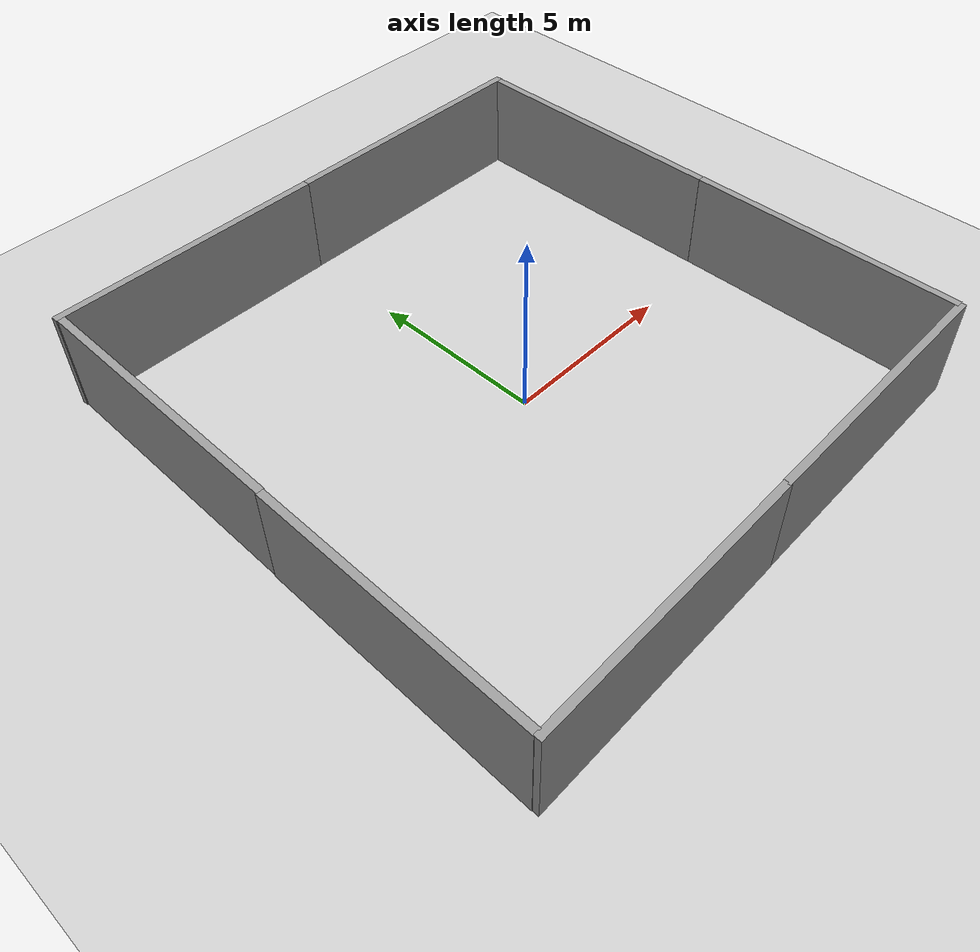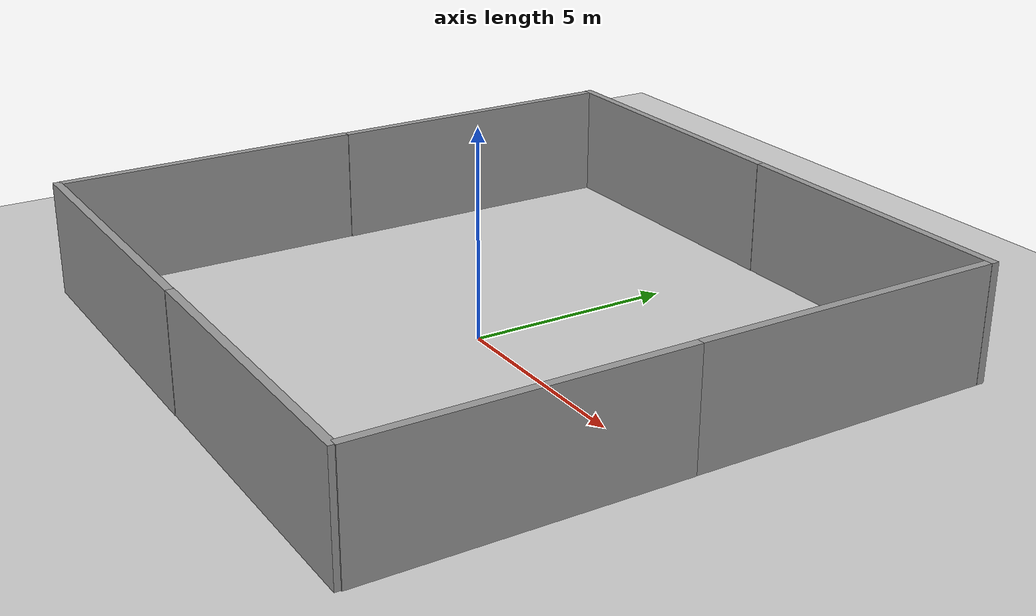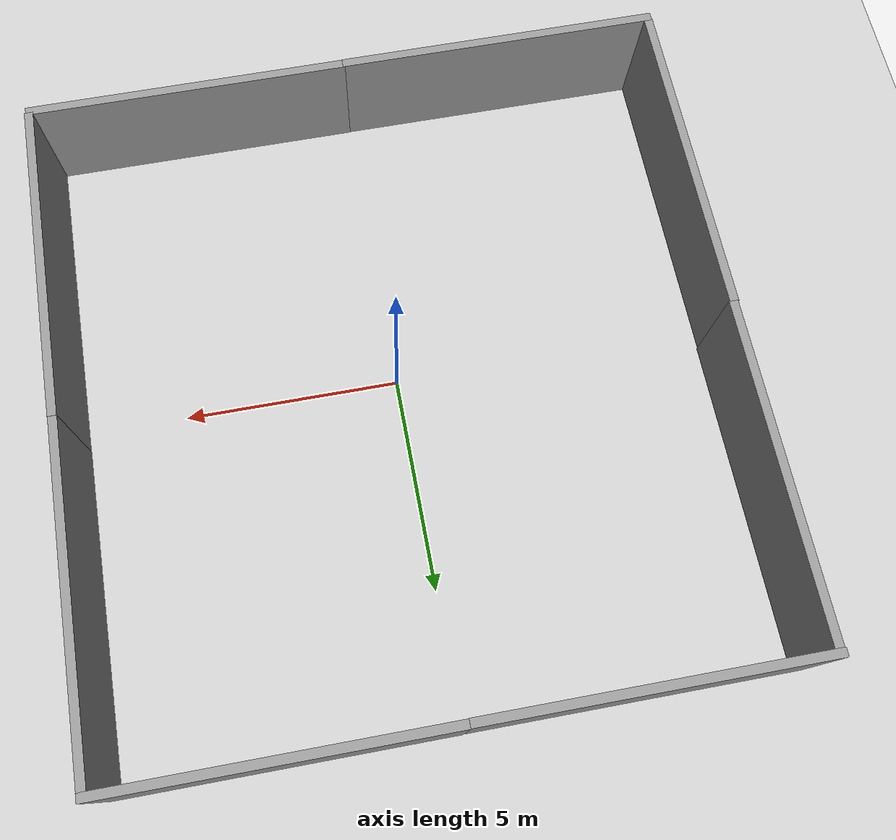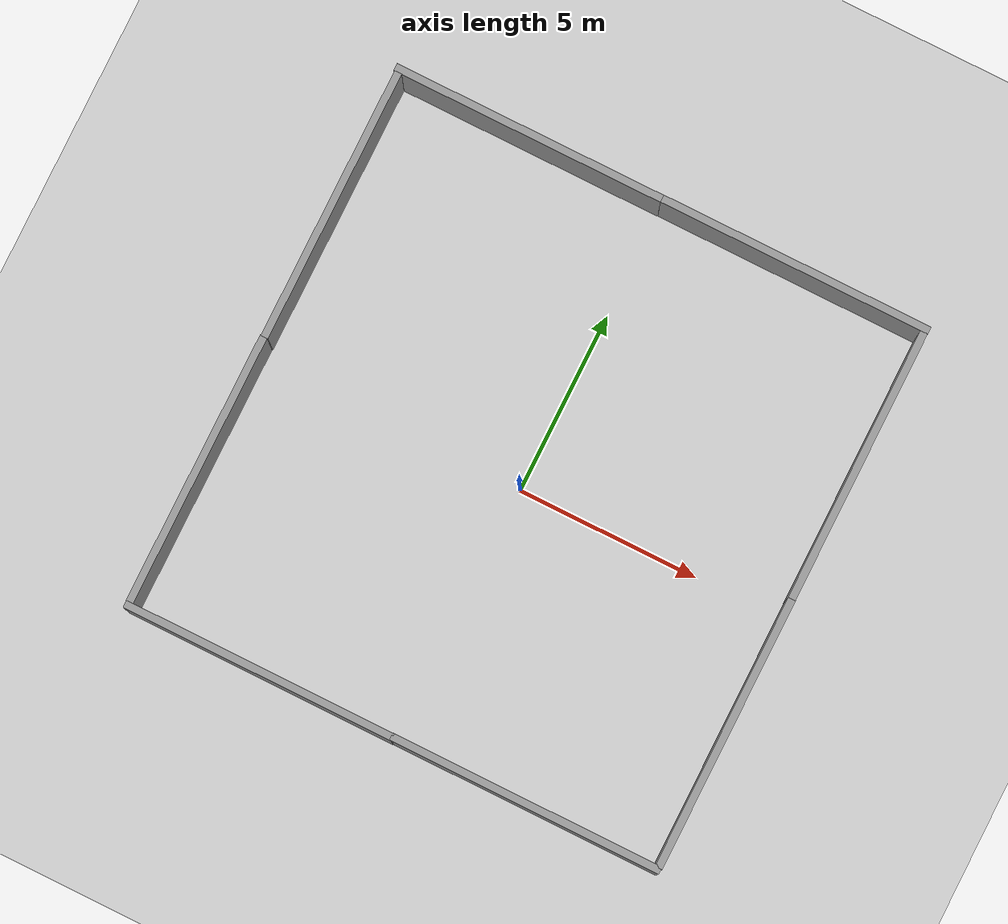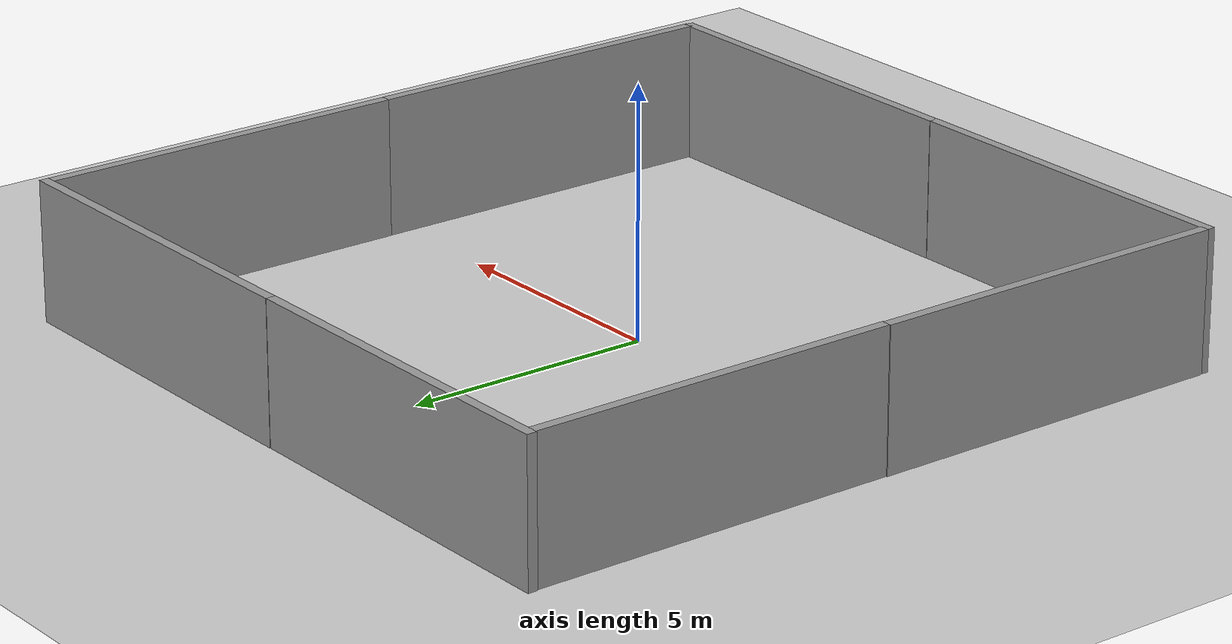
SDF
<sdf version="1.6">
 <world name="default">
  <light name="sun" type="directional">
   <pose>0 0 10 0 -0 0</pose>
   <diffuse>0.8 0.8 0.8 1</diffuse>
   <specular>0.1 0.1 0.1 1</specular>
   <attenuation>
    <range>1000</range>
    <constant>0.9</constant>
    <linear>0.01</linear>
    <quadratic>0.001</quadratic>
   </attenuation>
   <direction>-0.5 0.5 -1</direction>
  </light>
  <model name="ground_plane">
   <static>1</static>
   <link name="link">
    <collision name="collision">
     <geometry><plane><normal>0 0 1</normal><size>100 100</size></plane></geometry>
     <surface><friction><ode><mu>100</mu><mu2>50</mu2></ode></friction></surface>
    </collision>
    <visual name="visual">
     <cast_shadows>0</cast_shadows>
     <geometry><plane><normal>0 0 1</normal><size>100 100</size></plane></geometry>
     <material>
      <script><uri>file://media/materials/scripts/gazebo.material</uri><name>Gazebo/Grey</name></script>
     </material>
    </visual>
   </link>
  </model>
  <gravity>0 0 -9.8</gravity>
  <magnetic_field>6e-06 2.3e-05 -4.2e-05</magnetic_field>
  <atmosphere type="adiabatic"/>
  <physics name="default_physics" default="0" type="ode">
   <max_step_size>0.001</max_step_size>
   <real_time_factor>1</real_time_factor>
   <real_time_update_rate>1000</real_time_update_rate>
  </physics>
  <scene><ambient>0.4 0.4 0.4 1</ambient><background>0.7 0.7 0.7 1</background><shadows>1</shadows></scene>
  <spherical_coordinates>
   <surface_model>EARTH_WGS84</surface_model>
   <latitude_deg>0</latitude_deg>
   <longitude_deg>0</longitude_deg>
   <elevation>0</elevation>
   <heading_deg>0</heading_deg>
  </spherical_coordinates>
  <model name="grey_wall">
   <static>1</static>
   <link name="link">
    <pose>0 0 1.4 0 -0 0</pose>
    <collision name="collision"><geometry><box><size>7.5 0.2 2.8</size></box></geometry></collision>
    <visual name="visual">
     <cast_shadows>0</cast_shadows>
     <geometry><box><size>7.5 0.2 2.8</size></box></geometry>
     <material>
      <script>
       <uri>model://grey_wall/materials/scripts</uri>
       <uri>model://grey_wall/materials/textures</uri>
       <name>vrc/grey_wall</name>
      </script>
     </material>
    </visual>
   </link>
   <pose>-3.73857 7.99653 0 0 -0 0</pose>
  </model>
  <model name="grey_wall_0">
   <static>1</static>
   <link name="link">
    <pose>0 0 1.4 0 -0 0</pose>
    <collision name="collision"><geometry><box><size>7.5 0.2 2.8</size></box></geometry></collision>
    <visual name="visual">
     <cast_shadows>0</cast_shadows>
     <geometry><box><size>7.5 0.2 2.8</size></box></geometry>
     <material>
      <script>
       <uri>model://grey_wall/materials/scripts</uri>
       <uri>model://grey_wall/materials/textures</uri>
       <name>vrc/grey_wall</name>
      </script>
     </material>
    </visual>
   </link>
   <pose>3.75917 8.00369 0 0 -0 0</pose>
  </model>
  <model name="grey_wall_1">
   <static>1</static>
   <link name="link">
    <pose>0 0 1.4 0 -0 0</pose>
    <collision name="collision"><geometry><box><size>7.5 0.2 2.8</size></box></geometry></collision>
    <visual name="visual">
     <cast_shadows>0</cast_shadows>
     <geometry><box><size>7.5 0.2 2.8</size></box></geometry>
     <material>
      <script>
       <uri>model://grey_wall/materials/scripts</uri>
       <uri>model://grey_wall/materials/textures</uri>
       <name>vrc/grey_wall</name>
      </script>
     </material>
    </visual>
   </link>
   <pose>7.40152 4.1598 0 0 0 -1.57173</pose>
  </model>
  <model name="grey_wall_1_clone">
   <static>1</static>
   <link name="link">
    <pose>0 0 1.4 0 -0 0</pose>
    <collision name="collision"><geometry><box><size>7.5 0.2 2.8</size></box></geometry></collision>
    <visual name="visual">
     <cast_shadows>0</cast_shadows>
     <geometry><box><size>7.5 0.2 2.8</size></box></geometry>
     <material>
      <script>
       <uri>model://grey_wall/materials/scripts</uri>
       <uri>model://grey_wall/materials/textures</uri>
       <name>vrc/grey_wall</name>
      </script>
     </material>
    </visual>
   </link>
   <pose>7.39987 -3.34124 0 0 0 -1.57173</pose>
  </model>
  <model name="grey_wall_1_clone_0">
   <static>1</static>
   <link name="link">
    <pose>0 0 1.4 0 -0 0</pose>
    <collision name="collision"><geometry><box><size>7.5 0.2 2.8</size></box></geometry></collision>
    <visual name="visual">
     <cast_shadows>0</cast_shadows>
     <geometry><box><size>7.5 0.2 2.8</size></box></geometry>
     <material>
      <script>
       <uri>model://grey_wall/materials/scripts</uri>
       <uri>model://grey_wall/materials/textures</uri>
       <name>vrc/grey_wall</name>
      </script>
     </material>
    </visual>
   </link>
   <pose>-7.36726 4.15637 0 0 0 -1.57173</pose>
  </model>
  <model name="grey_wall_1_clone_0_clone">
   <static>1</static>
   <link name="link">
    <pose>0 0 1.4 0 -0 0</pose>
    <collision name="collision"><geometry><box><size>7.5 0.2 2.8</size></box></geometry></collision>
    <visual name="visual">
     <cast_shadows>0</cast_shadows>
     <geometry><box><size>7.5 0.2 2.8</size></box></geometry>
     <material>
      <script>
       <uri>model://grey_wall/materials/scripts</uri>
       <uri>model://grey_wall/materials/textures</uri>
       <name>vrc/grey_wall</name>
      </script>
     </material>
    </visual>
   </link>
   <pose>-7.3945 -3.32213 0 0 0 -1.57173</pose>
  </model>
  <model name="grey_wall_clone">
   <static>1</static>
   <link name="link">
    <pose>0 0 1.4 0 -0 0</pose>
    <collision name="collision"><geometry><box><size>7.5 0.2 2.8</size></box></geometry></collision>
    <visual name="visual">
     <cast_shadows>0</cast_shadows>
     <geometry><box><size>7.5 0.2 2.8</size></box></geometry>
     <material>
      <script>
       <uri>model://grey_wall/materials/scripts</uri>
       <uri>model://grey_wall/materials/textures</uri>
       <name>vrc/grey_wall</name>
      </script>
     </material>
    </visual>
   </link>
   <pose>-3.73569 -7.13591 0 0 -0 0</pose>
  </model>
  <model name="grey_wall_0_clone">
   <static>1</static>
   <link name="link">
    <pose>0 0 1.4 0 -0 0</pose>
    <collision name="collision"><geometry><box><size>7.5 0.2 2.8</size></box></geometry></collision>
    <visual name="visual">
     <cast_shadows>0</cast_shadows>
     <geometry><box><size>7.5 0.2 2.8</size></box></geometry>
     <material>
      <script>
       <uri>model://grey_wall/materials/scripts</uri>
       <uri>model://grey_wall/materials/textures</uri>
       <name>vrc/grey_wall</name>
      </script>
     </material>
    </visual>
   </link>
   <pose>3.71606 -7.12755 0 0 -0 0</pose>
  </model>
 </world>
</sdf>
